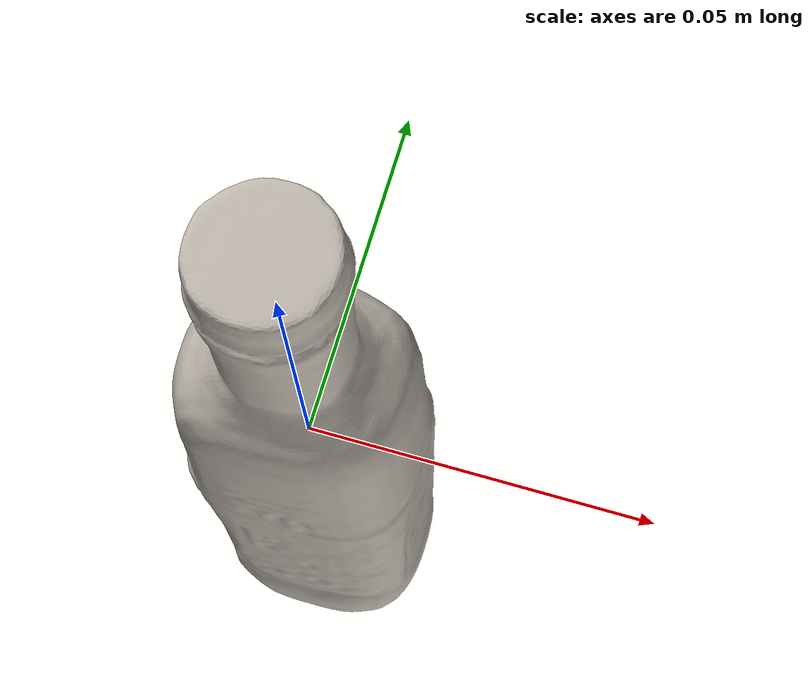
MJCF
<?xml version='1.0' encoding='utf-8'?>
<mujoco model="olive_oil_bottle_3">
  <asset>
    <texture file="ceramic.png" name="tex-olive_oil_bottle_3" type="2d" />
    <material name="olive_oil_bottle_3" reflectance="0.5" texrepeat="1 1" texture="tex-olive_oil_bottle_3" texuniform="false" />
    <mesh file="visual/model_normalized_0.obj" name="model_normalized_0_vis" scale="0.13 0.13 0.13" refquat="0.7071067811865475 0.0 0.0 0.7071067811865475" />
    <mesh file="collision/model_normalized_collision_13.obj" name="model_normalized_collision_13._coll" scale="0.13 0.13 0.13" refquat="0.7071067811865475 0.0 0.0 0.7071067811865475" />
    <mesh file="collision/model_normalized_collision_15.obj" name="model_normalized_collision_15._coll" scale="0.13 0.13 0.13" refquat="0.7071067811865475 0.0 0.0 0.7071067811865475" />
    <mesh file="collision/model_normalized_collision_10.obj" name="model_normalized_collision_10._coll" scale="0.13 0.13 0.13" refquat="0.7071067811865475 0.0 0.0 0.7071067811865475" />
    <mesh file="collision/model_normalized_collision_26.obj" name="model_normalized_collision_26._coll" scale="0.13 0.13 0.13" refquat="0.7071067811865475 0.0 0.0 0.7071067811865475" />
    <mesh file="collision/model_normalized_collision_25.obj" name="model_normalized_collision_25._coll" scale="0.13 0.13 0.13" refquat="0.7071067811865475 0.0 0.0 0.7071067811865475" />
    <mesh file="collision/model_normalized_collision_5.obj" name="model_normalized_collision_5._coll" scale="0.13 0.13 0.13" refquat="0.7071067811865475 0.0 0.0 0.7071067811865475" />
    <mesh file="collision/model_normalized_collision_31.obj" name="model_normalized_collision_31._coll" scale="0.13 0.13 0.13" refquat="0.7071067811865475 0.0 0.0 0.7071067811865475" />
    <mesh file="collision/model_normalized_collision_3.obj" name="model_normalized_collision_3._coll" scale="0.13 0.13 0.13" refquat="0.7071067811865475 0.0 0.0 0.7071067811865475" />
    <mesh file="collision/model_normalized_collision_14.obj" name="model_normalized_collision_14._coll" scale="0.13 0.13 0.13" refquat="0.7071067811865475 0.0 0.0 0.7071067811865475" />
    <mesh file="collision/model_normalized_collision_28.obj" name="model_normalized_collision_28._coll" scale="0.13 0.13 0.13" refquat="0.7071067811865475 0.0 0.0 0.7071067811865475" />
    <mesh file="collision/model_normalized_collision_11.obj" name="model_normalized_collision_11._coll" scale="0.13 0.13 0.13" refquat="0.7071067811865475 0.0 0.0 0.7071067811865475" />
    <mesh file="collision/model_normalized_collision_29.obj" name="model_normalized_collision_29._coll" scale="0.13 0.13 0.13" refquat="0.7071067811865475 0.0 0.0 0.7071067811865475" />
    <mesh file="collision/model_normalized_collision_24.obj" name="model_normalized_collision_24._coll" scale="0.13 0.13 0.13" refquat="0.7071067811865475 0.0 0.0 0.7071067811865475" />
    <mesh file="collision/model_normalized_collision_1.obj" name="model_normalized_collision_1._coll" scale="0.13 0.13 0.13" refquat="0.7071067811865475 0.0 0.0 0.7071067811865475" />
    <mesh file="collision/model_normalized_collision_0.obj" name="model_normalized_collision_0._coll" scale="0.13 0.13 0.13" refquat="0.7071067811865475 0.0 0.0 0.7071067811865475" />
    <mesh file="collision/model_normalized_collision_27.obj" name="model_normalized_collision_27._coll" scale="0.13 0.13 0.13" refquat="0.7071067811865475 0.0 0.0 0.7071067811865475" />
    <mesh file="collision/model_normalized_collision_9.obj" name="model_normalized_collision_9._coll" scale="0.13 0.13 0.13" refquat="0.7071067811865475 0.0 0.0 0.7071067811865475" />
    <mesh file="collision/model_normalized_collision_19.obj" name="model_normalized_collision_19._coll" scale="0.13 0.13 0.13" refquat="0.7071067811865475 0.0 0.0 0.7071067811865475" />
    <mesh file="collision/model_normalized_collision_21.obj" name="model_normalized_collision_21._coll" scale="0.13 0.13 0.13" refquat="0.7071067811865475 0.0 0.0 0.7071067811865475" />
    <mesh file="collision/model_normalized_collision_30.obj" name="model_normalized_collision_30._coll" scale="0.13 0.13 0.13" refquat="0.7071067811865475 0.0 0.0 0.7071067811865475" />
    <mesh file="collision/model_normalized_collision_20.obj" name="model_normalized_collision_20._coll" scale="0.13 0.13 0.13" refquat="0.7071067811865475 0.0 0.0 0.7071067811865475" />
    <mesh file="collision/model_normalized_collision_2.obj" name="model_normalized_collision_2._coll" scale="0.13 0.13 0.13" refquat="0.7071067811865475 0.0 0.0 0.7071067811865475" />
    <mesh file="collision/model_normalized_collision_7.obj" name="model_normalized_collision_7._coll" scale="0.13 0.13 0.13" refquat="0.7071067811865475 0.0 0.0 0.7071067811865475" />
    <mesh file="collision/model_normalized_collision_22.obj" name="model_normalized_collision_22._coll" scale="0.13 0.13 0.13" refquat="0.7071067811865475 0.0 0.0 0.7071067811865475" />
    <mesh file="collision/model_normalized_collision_16.obj" name="model_normalized_collision_16._coll" scale="0.13 0.13 0.13" refquat="0.7071067811865475 0.0 0.0 0.7071067811865475" />
    <mesh file="collision/model_normalized_collision_8.obj" name="model_normalized_collision_8._coll" scale="0.13 0.13 0.13" refquat="0.7071067811865475 0.0 0.0 0.7071067811865475" />
    <mesh file="collision/model_normalized_collision_6.obj" name="model_normalized_collision_6._coll" scale="0.13 0.13 0.13" refquat="0.7071067811865475 0.0 0.0 0.7071067811865475" />
    <mesh file="collision/model_normalized_collision_18.obj" name="model_normalized_collision_18._coll" scale="0.13 0.13 0.13" refquat="0.7071067811865475 0.0 0.0 0.7071067811865475" />
    <mesh file="collision/model_normalized_collision_17.obj" name="model_normalized_collision_17._coll" scale="0.13 0.13 0.13" refquat="0.7071067811865475 0.0 0.0 0.7071067811865475" />
    <mesh file="collision/model_normalized_collision_12.obj" name="model_normalized_collision_12._coll" scale="0.13 0.13 0.13" refquat="0.7071067811865475 0.0 0.0 0.7071067811865475" />
    <mesh file="collision/model_normalized_collision_4.obj" name="model_normalized_collision_4._coll" scale="0.13 0.13 0.13" refquat="0.7071067811865475 0.0 0.0 0.7071067811865475" />
    <mesh file="collision/model_normalized_collision_23.obj" name="model_normalized_collision_23._coll" scale="0.13 0.13 0.13" refquat="0.7071067811865475 0.0 0.0 0.7071067811865475" />
    <texture type="2d" name="ab846250e93c_Olive_oil_Bottle__3_texture_kd" file="visual/ab846250e93c_Olive_oil_Bottle__3_texture_kd.png" />
    <material name="Material_0" texture="ab846250e93c_Olive_oil_Bottle__3_texture_kd" specular="0.5" shininess="0.5" />
  </asset>
  <default>
    <default class="region">
      <geom group="1" conaffinity="0" contype="0" rgba="0 1 0 0" />
    </default>
  </default>
  <worldbody>
    <body>
      <body name="object">
        <geom solimp="0.998 0.998 0.001" solref="0.001 1" density="100" friction="0.95 0.3 0.1" type="mesh" mesh="model_normalized_0_vis" conaffinity="0" contype="0" group="1" material="Material_0" />
        <geom solimp="0.998 0.998 0.001" solref="0.001 1" density="100" friction="0.95 0.3 0.1" type="mesh" mesh="model_normalized_collision_13._coll" group="0" rgba="0.8 0.8 0.8 0.0" />
        <geom solimp="0.998 0.998 0.001" solref="0.001 1" density="100" friction="0.95 0.3 0.1" type="mesh" mesh="model_normalized_collision_15._coll" group="0" rgba="0.8 0.8 0.8 0.0" />
        <geom solimp="0.998 0.998 0.001" solref="0.001 1" density="100" friction="0.95 0.3 0.1" type="mesh" mesh="model_normalized_collision_10._coll" group="0" rgba="0.8 0.8 0.8 0.0" />
        <geom solimp="0.998 0.998 0.001" solref="0.001 1" density="100" friction="0.95 0.3 0.1" type="mesh" mesh="model_normalized_collision_26._coll" group="0" rgba="0.8 0.8 0.8 0.0" />
        <geom solimp="0.998 0.998 0.001" solref="0.001 1" density="100" friction="0.95 0.3 0.1" type="mesh" mesh="model_normalized_collision_25._coll" group="0" rgba="0.8 0.8 0.8 0.0" />
        <geom solimp="0.998 0.998 0.001" solref="0.001 1" density="100" friction="0.95 0.3 0.1" type="mesh" mesh="model_normalized_collision_5._coll" group="0" rgba="0.8 0.8 0.8 0.0" />
        <geom solimp="0.998 0.998 0.001" solref="0.001 1" density="100" friction="0.95 0.3 0.1" type="mesh" mesh="model_normalized_collision_31._coll" group="0" rgba="0.8 0.8 0.8 0.0" />
        <geom solimp="0.998 0.998 0.001" solref="0.001 1" density="100" friction="0.95 0.3 0.1" type="mesh" mesh="model_normalized_collision_3._coll" group="0" rgba="0.8 0.8 0.8 0.0" />
        <geom solimp="0.998 0.998 0.001" solref="0.001 1" density="100" friction="0.95 0.3 0.1" type="mesh" mesh="model_normalized_collision_14._coll" group="0" rgba="0.8 0.8 0.8 0.0" />
        <geom solimp="0.998 0.998 0.001" solref="0.001 1" density="100" friction="0.95 0.3 0.1" type="mesh" mesh="model_normalized_collision_28._coll" group="0" rgba="0.8 0.8 0.8 0.0" />
        <geom solimp="0.998 0.998 0.001" solref="0.001 1" density="100" friction="0.95 0.3 0.1" type="mesh" mesh="model_normalized_collision_11._coll" group="0" rgba="0.8 0.8 0.8 0.0" />
        <geom solimp="0.998 0.998 0.001" solref="0.001 1" density="100" friction="0.95 0.3 0.1" type="mesh" mesh="model_normalized_collision_29._coll" group="0" rgba="0.8 0.8 0.8 0.0" />
        <geom solimp="0.998 0.998 0.001" solref="0.001 1" density="100" friction="0.95 0.3 0.1" type="mesh" mesh="model_normalized_collision_24._coll" group="0" rgba="0.8 0.8 0.8 0.0" />
        <geom solimp="0.998 0.998 0.001" solref="0.001 1" density="100" friction="0.95 0.3 0.1" type="mesh" mesh="model_normalized_collision_1._coll" group="0" rgba="0.8 0.8 0.8 0.0" />
        <geom solimp="0.998 0.998 0.001" solref="0.001 1" density="100" friction="0.95 0.3 0.1" type="mesh" mesh="model_normalized_collision_0._coll" group="0" rgba="0.8 0.8 0.8 0.0" />
        <geom solimp="0.998 0.998 0.001" solref="0.001 1" density="100" friction="0.95 0.3 0.1" type="mesh" mesh="model_normalized_collision_27._coll" group="0" rgba="0.8 0.8 0.8 0.0" />
        <geom solimp="0.998 0.998 0.001" solref="0.001 1" density="100" friction="0.95 0.3 0.1" type="mesh" mesh="model_normalized_collision_9._coll" group="0" rgba="0.8 0.8 0.8 0.0" />
        <geom solimp="0.998 0.998 0.001" solref="0.001 1" density="100" friction="0.95 0.3 0.1" type="mesh" mesh="model_normalized_collision_19._coll" group="0" rgba="0.8 0.8 0.8 0.0" />
        <geom solimp="0.998 0.998 0.001" solref="0.001 1" density="100" friction="0.95 0.3 0.1" type="mesh" mesh="model_normalized_collision_21._coll" group="0" rgba="0.8 0.8 0.8 0.0" />
        <geom solimp="0.998 0.998 0.001" solref="0.001 1" density="100" friction="0.95 0.3 0.1" type="mesh" mesh="model_normalized_collision_30._coll" group="0" rgba="0.8 0.8 0.8 0.0" />
        <geom solimp="0.998 0.998 0.001" solref="0.001 1" density="100" friction="0.95 0.3 0.1" type="mesh" mesh="model_normalized_collision_20._coll" group="0" rgba="0.8 0.8 0.8 0.0" />
        <geom solimp="0.998 0.998 0.001" solref="0.001 1" density="100" friction="0.95 0.3 0.1" type="mesh" mesh="model_normalized_collision_2._coll" group="0" rgba="0.8 0.8 0.8 0.0" />
        <geom solimp="0.998 0.998 0.001" solref="0.001 1" density="100" friction="0.95 0.3 0.1" type="mesh" mesh="model_normalized_collision_7._coll" group="0" rgba="0.8 0.8 0.8 0.0" />
        <geom solimp="0.998 0.998 0.001" solref="0.001 1" density="100" friction="0.95 0.3 0.1" type="mesh" mesh="model_normalized_collision_22._coll" group="0" rgba="0.8 0.8 0.8 0.0" />
        <geom solimp="0.998 0.998 0.001" solref="0.001 1" density="100" friction="0.95 0.3 0.1" type="mesh" mesh="model_normalized_collision_16._coll" group="0" rgba="0.8 0.8 0.8 0.0" />
        <geom solimp="0.998 0.998 0.001" solref="0.001 1" density="100" friction="0.95 0.3 0.1" type="mesh" mesh="model_normalized_collision_8._coll" group="0" rgba="0.8 0.8 0.8 0.0" />
        <geom solimp="0.998 0.998 0.001" solref="0.001 1" density="100" friction="0.95 0.3 0.1" type="mesh" mesh="model_normalized_collision_6._coll" group="0" rgba="0.8 0.8 0.8 0.0" />
        <geom solimp="0.998 0.998 0.001" solref="0.001 1" density="100" friction="0.95 0.3 0.1" type="mesh" mesh="model_normalized_collision_18._coll" group="0" rgba="0.8 0.8 0.8 0.0" />
        <geom solimp="0.998 0.998 0.001" solref="0.001 1" density="100" friction="0.95 0.3 0.1" type="mesh" mesh="model_normalized_collision_17._coll" group="0" rgba="0.8 0.8 0.8 0.0" />
        <geom solimp="0.998 0.998 0.001" solref="0.001 1" density="100" friction="0.95 0.3 0.1" type="mesh" mesh="model_normalized_collision_12._coll" group="0" rgba="0.8 0.8 0.8 0.0" />
        <geom solimp="0.998 0.998 0.001" solref="0.001 1" density="100" friction="0.95 0.3 0.1" type="mesh" mesh="model_normalized_collision_4._coll" group="0" rgba="0.8 0.8 0.8 0.0" />
        <geom solimp="0.998 0.998 0.001" solref="0.001 1" density="100" friction="0.95 0.3 0.1" type="mesh" mesh="model_normalized_collision_23._coll" group="0" rgba="0.8 0.8 0.8 0.0" />
        <geom class="region" name="reg_bbox" type="box" pos="1.2430600000000597e-05 6.189755000000033e-05 -1.299999989601286e-09" size="0.017739703800000003 0.0158194738 0.06598485010000002" />
      </body>
    <site rgba="0 0 0 0" size="0.005" pos="0 0 -0.065984851" name="bottom_site" /><site rgba="0 0 0 0" size="0.005" pos="0 0 0.065984849" name="top_site" /><site rgba="0 0 0 0" size="0.005" pos="0.017752134 0.017752134 0" name="horizontal_radius_site" /></body>
  </worldbody>
</mujoco>
